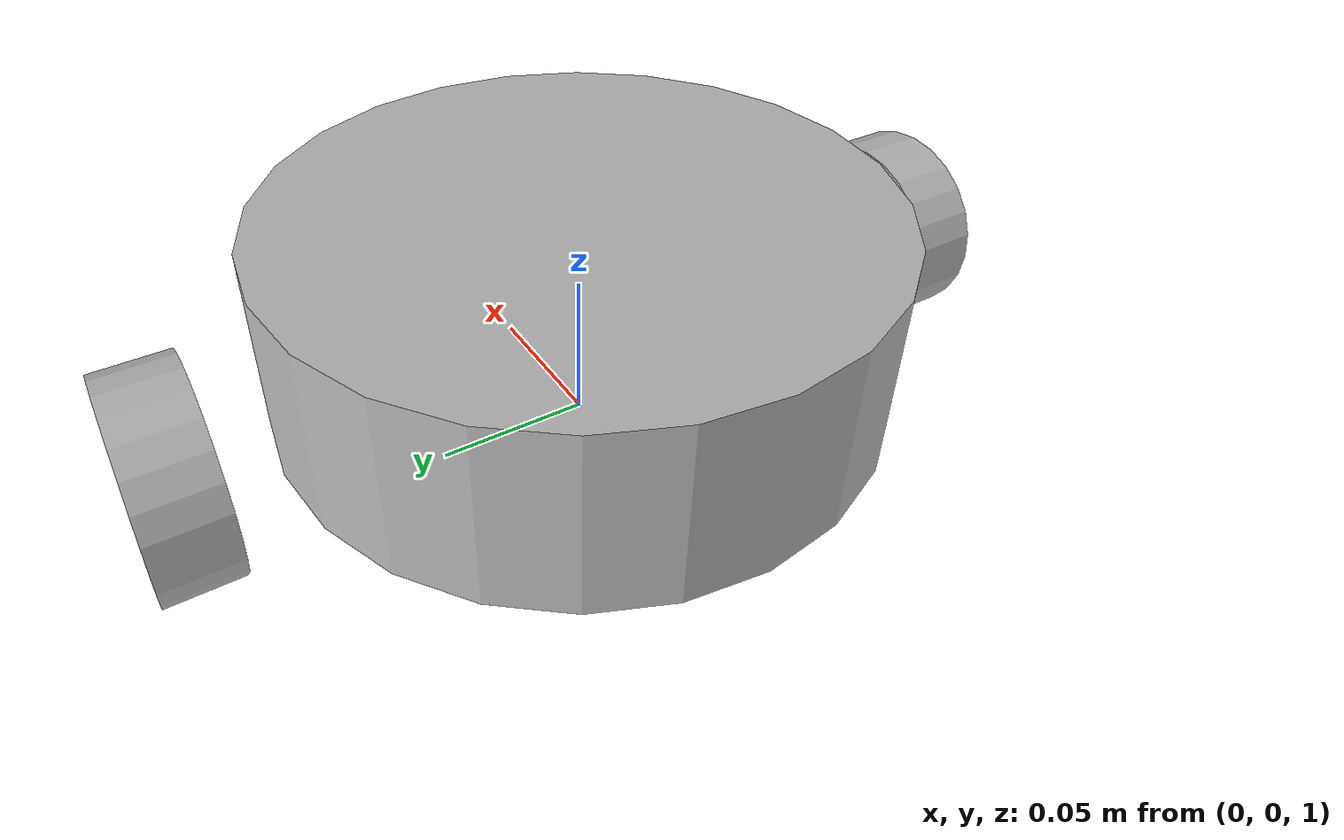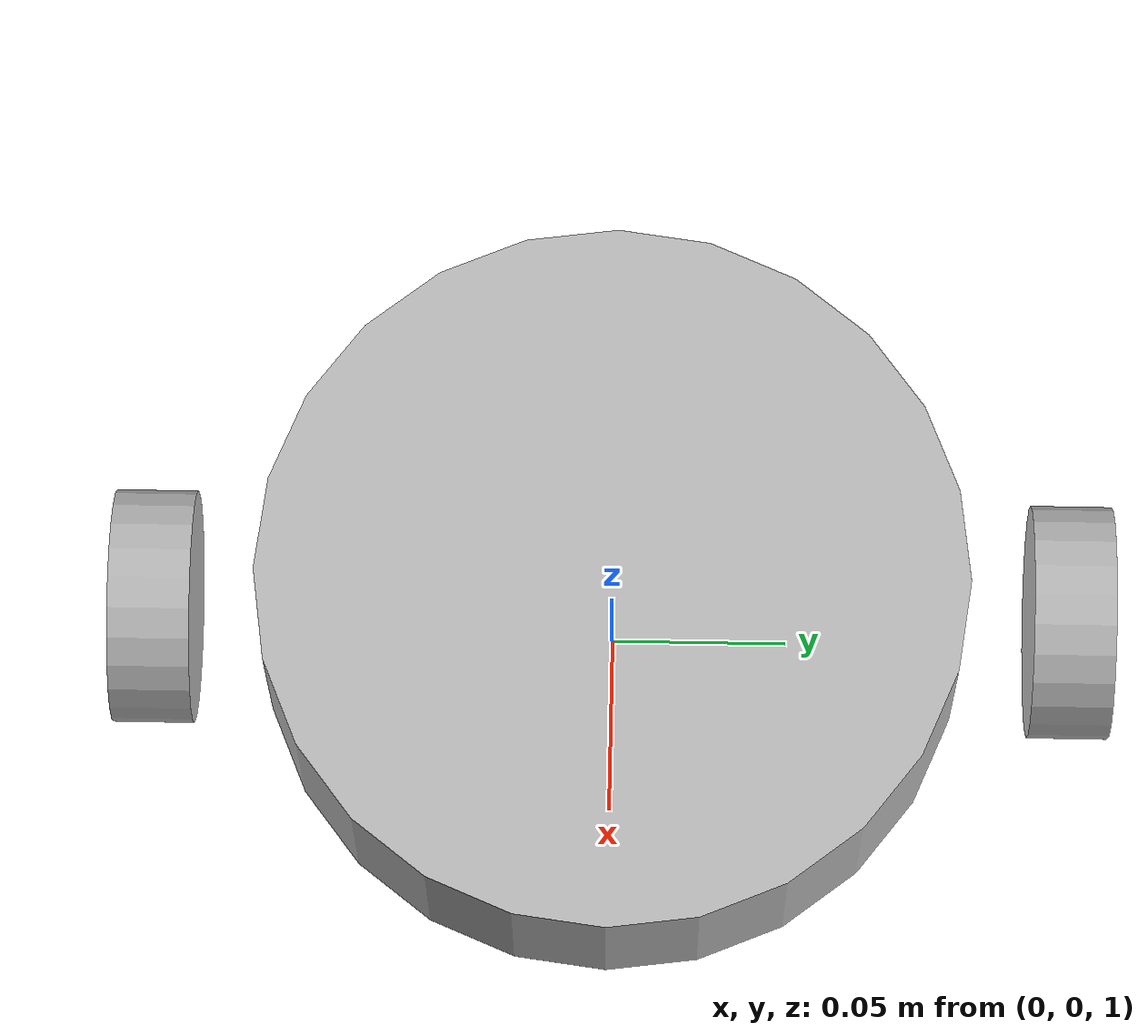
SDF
<?xml version="1.0"?>
<sdf version="1.4">
  <world name="201x_world">
    <include>
      <uri>model://sun</uri>
    </include>

    <include>
      <uri>model://ground_plane</uri>
    </include>

    <include>
      <uri>model://cbot</uri>
      <name>botB</name>
      <pose>0 0 1.0 0 0 0</pose>
    </include>

  </world>
</sdf>

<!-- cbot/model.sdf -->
<sdf version="1.4">
  <model name="cbot">
    <plugin name="differential_drive_controller" filename="libgazebo_ros_diff_drive.so">
      <legacyMode>false</legacyMode>
      <alwaysOn>true</alwaysOn>
      <updateRate>20</updateRate>
      <leftJoint>left_wheel</leftJoint>
      <rightJoint>right_wheel</rightJoint>
      <wheelSeparation>0.5380</wheelSeparation>
      <wheelDiameter>0.2410</wheelDiameter>
      <torque>20</torque>
      <commandTopic>cmd_vel</commandTopic>
      <odometryTopic>odom</odometryTopic>
      <odometryFrame>odom</odometryFrame>
      <robotBaseFrame>base_footprint</robotBaseFrame>
    </plugin>

    <link name="base">
      <inertial>
        <pose>0.001453 -0.000453 0.029787 0 0 0</pose>
        <inertia>
          <ixx>0.058640</ixx>
          <ixy>0.000124</ixy>
          <ixz>0.000615</ixz>
          <iyy>0.058786</iyy>
          <iyz>0.000014</iyz>
          <izz>1.532440</izz>
        </inertia>
        <mass>2.234000</mass>
      </inertial>
      <collision name="base_collision">
        <pose>0 0 0.047800 0 0 0</pose>
        <geometry>
          <cylinder>
            <radius>0.10</radius>
            <length>0.061163</length>
          </cylinder>
        </geometry>
      </collision>
      <visual name="visual">
        <pose>0 0 0.047800 0 0 0</pose>
        <geometry>
          <cylinder>
            <radius>0.10</radius>
            <length>0.061163</length>
          </cylinder>
        </geometry>
      </visual>
    </link>

    <link name="left_wheel">
      <pose>0 0.130000 0.032000 0 0 0</pose>
      <inertial>
        <inertia>
          <ixx>0.001000</ixx>
          <ixy>0</ixy>
          <ixz>0</ixz>
          <iyy>0.001000</iyy>
          <iyz>0</iyz>
          <izz>0.001000</izz>
        </inertia>
        <mass>0.010000</mass>
      </inertial>
      <collision name="collision">
        <pose>0 0 0 0 1.570700 1.570700</pose>
        <geometry>
          <cylinder>
            <radius>0.033000</radius>
            <length>0.023000</length>
          </cylinder>
        </geometry>
        <surface>
          <friction>
            <ode>
              <mu>10</mu>
              <mu2>10</mu2>
              <fdir1>0 0 0</fdir1>
              <slip1>0</slip1>
              <slip2>0</slip2>
            </ode>
          </friction>
        </surface>
      </collision>
      <visual name="visual">
        <pose>0 0 0 0 1.570700 1.570700</pose>
        <geometry>
          <cylinder>
            <radius>0.033000</radius>
            <length>0.023000</length>
          </cylinder>
        </geometry>
      </visual>
    </link>

    <link name="right_wheel">
      <pose>0 -0.130000 0.032000 0 0 0</pose>
      <inertial>
        <inertia>
          <ixx>0.001000</ixx>
          <ixy>0</ixy>
          <ixz>0</ixz>
          <iyy>0.001000</iyy>
          <iyz>0</iyz>
          <izz>0.001000</izz>
        </inertia>
        <mass>0.010000</mass>
      </inertial>
      <collision name="collision">
        <pose>0 0 0 0 1.570700 1.570700</pose>
        <geometry>
          <cylinder>
            <radius>0.033000</radius>
            <length>0.023000</length>
          </cylinder>
        </geometry>
        <surface>
          <friction>
            <ode>
              <mu>10</mu>
              <mu2>10</mu2>
              <fdir1>0 0 0</fdir1>
              <slip1>0</slip1>
              <slip2>0</slip2>
            </ode>
          </friction>
        </surface>
      </collision>
      <visual name="visual">
        <pose>0 0 0 0 1.570700 1.570700</pose>
        <geometry>
          <cylinder>
            <radius>0.033000</radius>
            <length>0.023000</length>
          </cylinder>
        </geometry>
      </visual>
    </link>

    <joint name="left_wheel" type="revolute">
      <parent>base</parent>
      <child>left_wheel</child>
      <axis>
        <xyz>0 1 0</xyz>
      </axis>
    </joint>

    <joint name="right_wheel" type="revolute">
      <parent>base</parent>
      <child>right_wheel</child>
      <axis>
        <xyz>0 1 0</xyz>
      </axis>
    </joint>

  </model>
</sdf>
